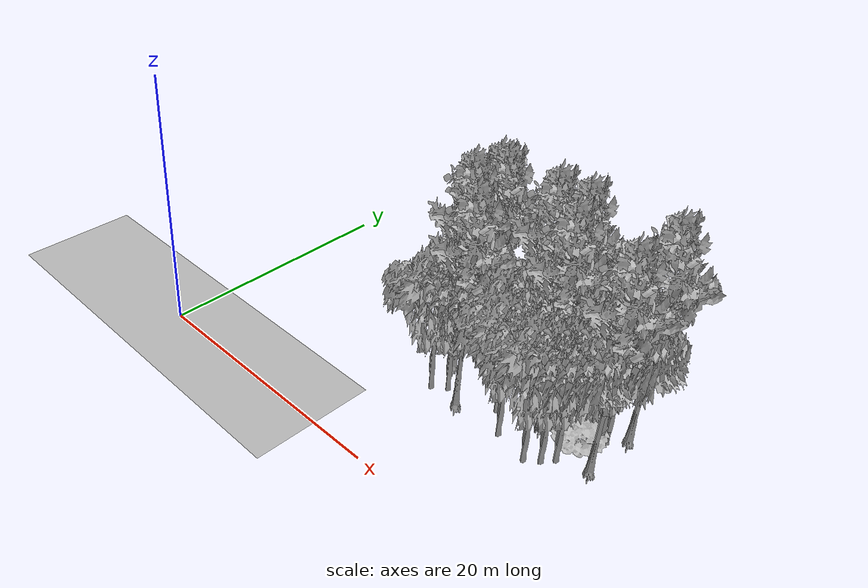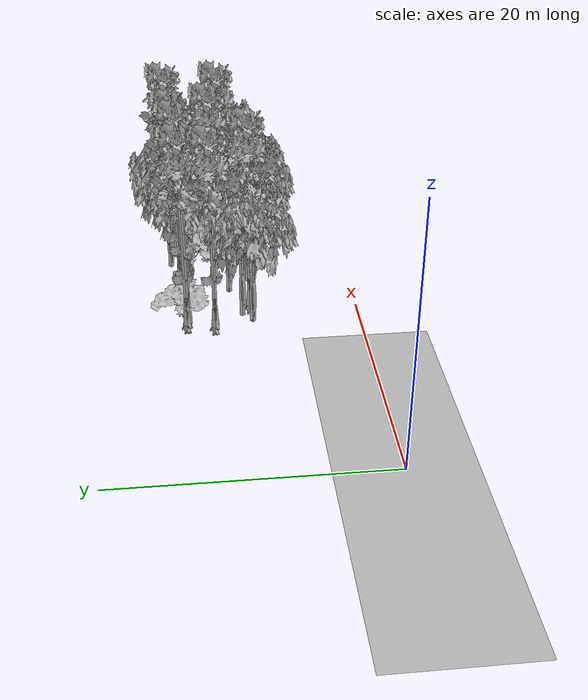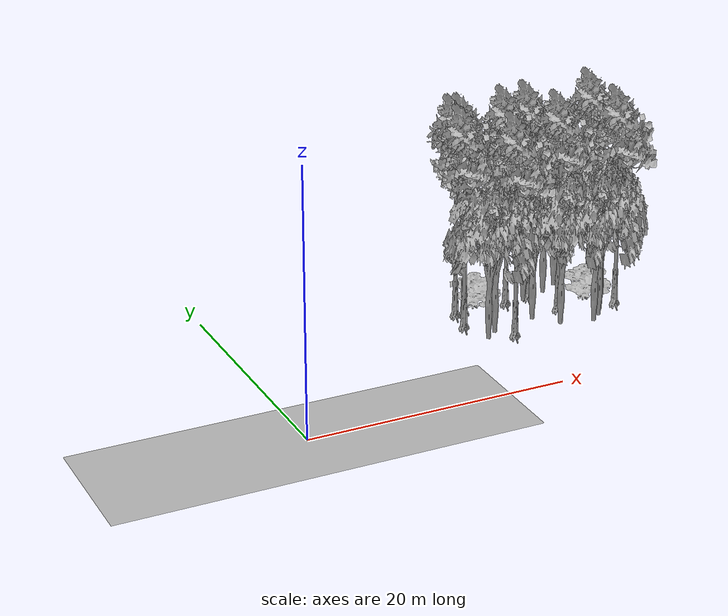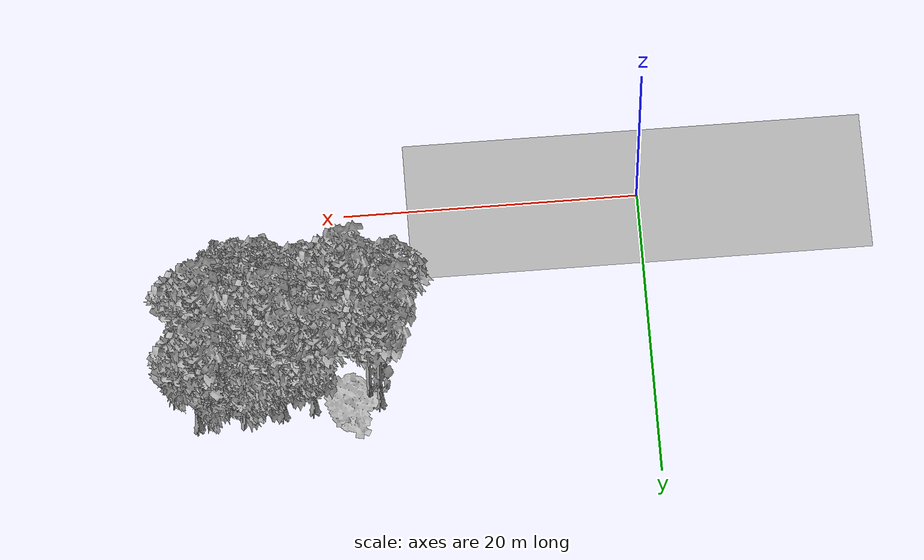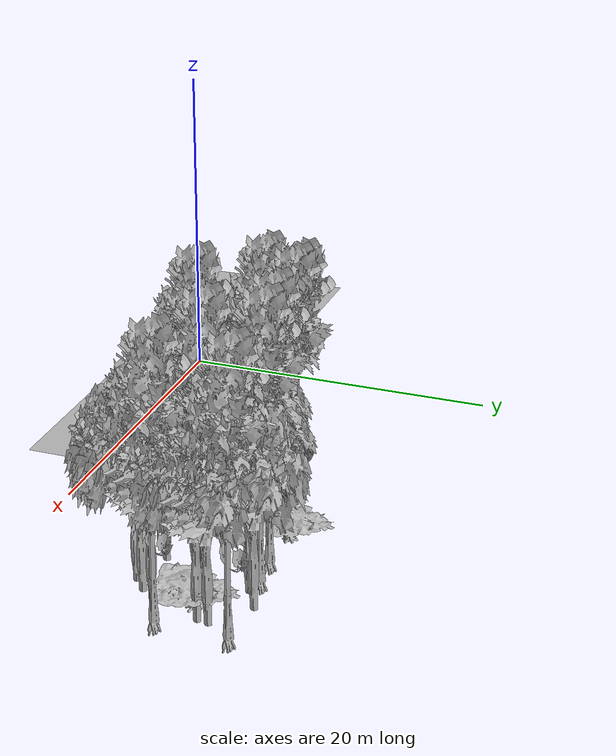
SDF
<sdf version="1.7">
 <world name="default">
  <model name="ground_plane">
   <static>1</static>
   <link name="link">
    <collision name="collision">
     <pose>-50 0 0 0 -0 0</pose>
     <geometry><plane><normal>0 0 1</normal><size>100 100</size></plane></geometry>
     <surface><contact><ode><min_depth>0.01</min_depth><max_vel>0</max_vel></ode></contact></surface>
    </collision>
    <visual name="grass">
     <cast_shadows>0</cast_shadows>
     <geometry>
      <mesh>
       <scale>0.5814285714285714 0.18142857142857144 0.1</scale>
       <uri>file://grass_plane/meshes/grass_plane.dae</uri>
      </mesh>
     </geometry>
    </visual>
   </link>
  </model>
  <model name="Tree 26">
   <static>1</static>
   <pose>19.39115049102091 9.248823598836541 0 1.57079 -0 0</pose>
   <link name="link">
    <collision name="collision">
     <geometry><mesh><scale>3.5 5 3.5</scale><uri>model://tree_2/meshes/tree_2.obj</uri></mesh></geometry>
    </collision>
    <visual name="visual">
     <geometry><mesh><scale>3.5 5 3.5</scale><uri>model://tree_2/meshes/tree_2.obj</uri></mesh></geometry>
    </visual>
   </link>
  </model>
  <model name="Tree 39">
   <static>1</static>
   <pose>28.55282487350665 9.299607638582302 0 1.57079 -0 0</pose>
   <link name="link">
    <collision name="collision">
     <geometry><mesh><scale>3.5 5 3.5</scale><uri>model://tree_2/meshes/tree_2.obj</uri></mesh></geometry>
    </collision>
    <visual name="visual">
     <geometry><mesh><scale>3.5 5 3.5</scale><uri>model://tree_2/meshes/tree_2.obj</uri></mesh></geometry>
    </visual>
   </link>
  </model>
  <model name="Tree 128">
   <static>1</static>
   <pose>24.981876319515365 14.09570819026543 0 1.57079 -0 0</pose>
   <link name="link">
    <collision name="collision">
     <geometry><mesh><scale>3.5 5 3.5</scale><uri>model://tree_9/meshes/tree_9.obj</uri></mesh></geometry>
    </collision>
    <visual name="visual">
     <geometry><mesh><scale>3.5 5 3.5</scale><uri>model://tree_9/meshes/tree_9.obj</uri></mesh></geometry>
    </visual>
   </link>
  </model>
  <model name="Tree 147">
   <static>1</static>
   <pose>18.055874720401306 11.52196916862318 0 1.57079 -0 0</pose>
   <link name="link">
    <collision name="collision">
     <geometry><mesh><scale>3.5 5 3.5</scale><uri>model://tree_9/meshes/tree_9.obj</uri></mesh></geometry>
    </collision>
    <visual name="visual">
     <geometry><mesh><scale>3.5 5 3.5</scale><uri>model://tree_9/meshes/tree_9.obj</uri></mesh></geometry>
    </visual>
   </link>
  </model>
  <model name="Tree 148">
   <static>1</static>
   <pose>26.018302990979265 11.208152750171038 0 1.57079 -0 0</pose>
   <link name="link">
    <collision name="collision">
     <geometry><mesh><scale>3.5 5 3.5</scale><uri>model://tree_9/meshes/tree_9.obj</uri></mesh></geometry>
    </collision>
    <visual name="visual">
     <geometry><mesh><scale>3.5 5 3.5</scale><uri>model://tree_9/meshes/tree_9.obj</uri></mesh></geometry>
    </visual>
   </link>
  </model>
  <model name="Tree 160">
   <static>1</static>
   <pose>27.120773349859945 7.752285397740323 0 1.57079 -0 0</pose>
   <link name="link">
    <collision name="collision">
     <geometry><mesh><scale>3.5 5 3.5</scale><uri>model://tree_2/meshes/tree_2.obj</uri></mesh></geometry>
    </collision>
    <visual name="visual">
     <geometry><mesh><scale>3.5 5 3.5</scale><uri>model://tree_2/meshes/tree_2.obj</uri></mesh></geometry>
    </visual>
   </link>
  </model>
  <model name="Tree 167">
   <static>1</static>
   <pose>18.44989205855812 13.727314058267329 0 1.57079 -0 0</pose>
   <link name="link">
    <collision name="collision">
     <geometry><mesh><scale>3.5 5 3.5</scale><uri>model://tree_9/meshes/tree_9.obj</uri></mesh></geometry>
    </collision>
    <visual name="visual">
     <geometry><mesh><scale>3.5 5 3.5</scale><uri>model://tree_9/meshes/tree_9.obj</uri></mesh></geometry>
    </visual>
   </link>
  </model>
  <model name="Tree 170">
   <static>1</static>
   <pose>23.06094981415076 10.070596392694327 0 1.57079 -0 0</pose>
   <link name="link">
    <collision name="collision">
     <geometry><mesh><scale>3.5 5 3.5</scale><uri>model://tree_2/meshes/tree_2.obj</uri></mesh></geometry>
    </collision>
    <visual name="visual">
     <geometry><mesh><scale>3.5 5 3.5</scale><uri>model://tree_2/meshes/tree_2.obj</uri></mesh></geometry>
    </visual>
   </link>
  </model>
  <model name="Tree 178">
   <static>1</static>
   <pose>22.89803882903739 13.845923478830425 0 1.57079 -0 0</pose>
   <link name="link">
    <collision name="collision">
     <geometry><mesh><scale>3.5 5 3.5</scale><uri>model://tree_9/meshes/tree_9.obj</uri></mesh></geometry>
    </collision>
    <visual name="visual">
     <geometry><mesh><scale>3.5 5 3.5</scale><uri>model://tree_9/meshes/tree_9.obj</uri></mesh></geometry>
    </visual>
   </link>
  </model>
  <model name="Tree 205">
   <static>1</static>
   <pose>19.145765016167502 13.621200272532473 0 1.57079 -0 0</pose>
   <link name="link">
    <collision name="collision">
     <geometry><mesh><scale>3.5 5 3.5</scale><uri>model://tree_9/meshes/tree_9.obj</uri></mesh></geometry>
    </collision>
    <visual name="visual">
     <geometry><mesh><scale>3.5 5 3.5</scale><uri>model://tree_9/meshes/tree_9.obj</uri></mesh></geometry>
    </visual>
   </link>
  </model>
  <model name="Tree 210">
   <static>1</static>
   <pose>24.57642323534644 8.389521329249362 0 1.57079 -0 0</pose>
   <link name="link">
    <collision name="collision">
     <geometry><mesh><scale>3.5 5 3.5</scale><uri>model://tree_2/meshes/tree_2.obj</uri></mesh></geometry>
    </collision>
    <visual name="visual">
     <geometry><mesh><scale>3.5 5 3.5</scale><uri>model://tree_2/meshes/tree_2.obj</uri></mesh></geometry>
    </visual>
   </link>
  </model>
  <model name="Tree 211">
   <static>1</static>
   <pose>27.624650530721055 14.76521222126371 0 1.57079 -0 0</pose>
   <link name="link">
    <collision name="collision">
     <geometry><mesh><scale>3.5 5 3.5</scale><uri>model://tree_2/meshes/tree_2.obj</uri></mesh></geometry>
    </collision>
    <visual name="visual">
     <geometry><mesh><scale>3.5 5 3.5</scale><uri>model://tree_2/meshes/tree_2.obj</uri></mesh></geometry>
    </visual>
   </link>
  </model>
  <model name="Tree 226">
   <static>1</static>
   <pose>20.825550270508714 8.562087697754485 0 1.57079 -0 0</pose>
   <link name="link">
    <collision name="collision">
     <geometry><mesh><scale>3.5 5 3.5</scale><uri>model://tree_9/meshes/tree_9.obj</uri></mesh></geometry>
    </collision>
    <visual name="visual">
     <geometry><mesh><scale>3.5 5 3.5</scale><uri>model://tree_9/meshes/tree_9.obj</uri></mesh></geometry>
    </visual>
   </link>
  </model>
  <model name="Tree 256">
   <static>1</static>
   <pose>29.813291449878875 13.03979170432649 0 1.57079 -0 0</pose>
   <link name="link">
    <collision name="collision">
     <geometry><mesh><scale>3.5 5 3.5</scale><uri>model://tree_2/meshes/tree_2.obj</uri></mesh></geometry>
    </collision>
    <visual name="visual">
     <geometry><mesh><scale>3.5 5 3.5</scale><uri>model://tree_2/meshes/tree_2.obj</uri></mesh></geometry>
    </visual>
   </link>
  </model>
  <model name="Tree 312">
   <static>1</static>
   <pose>18.46031974773875 8.49899124641843 0 1.57079 -0 0</pose>
   <link name="link">
    <collision name="collision">
     <geometry><mesh><scale>3.5 5 3.5</scale><uri>model://tree_2/meshes/tree_2.obj</uri></mesh></geometry>
    </collision>
    <visual name="visual">
     <geometry><mesh><scale>3.5 5 3.5</scale><uri>model://tree_2/meshes/tree_2.obj</uri></mesh></geometry>
    </visual>
   </link>
  </model>
  <model name="Tree 345">
   <static>1</static>
   <pose>29.714665973153075 12.385492703131295 0 1.57079 -0 0</pose>
   <link name="link">
    <collision name="collision">
     <geometry><mesh><scale>3.5 5 3.5</scale><uri>model://tree_2/meshes/tree_2.obj</uri></mesh></geometry>
    </collision>
    <visual name="visual">
     <geometry><mesh><scale>3.5 5 3.5</scale><uri>model://tree_2/meshes/tree_2.obj</uri></mesh></geometry>
    </visual>
   </link>
  </model>
  <model name="Tree 386">
   <static>1</static>
   <pose>28.639728731777026 11.70061276984962 0 1.57079 -0 0</pose>
   <link name="link">
    <collision name="collision">
     <geometry><mesh><scale>4 2.5 4</scale><uri>model://tree_1/meshes/tree_1.obj</uri></mesh></geometry>
    </collision>
    <visual name="visual">
     <geometry><mesh><scale>4 2.5 4</scale><uri>model://tree_1/meshes/tree_1.obj</uri></mesh></geometry>
    </visual>
   </link>
  </model>
  <model name="Tree 406">
   <static>1</static>
   <pose>30.723353600945984 14.53464548529628 0 1.57079 -0 0</pose>
   <link name="link">
    <collision name="collision">
     <geometry><mesh><scale>3.5 5 3.5</scale><uri>model://tree_9/meshes/tree_9.obj</uri></mesh></geometry>
    </collision>
    <visual name="visual">
     <geometry><mesh><scale>3.5 5 3.5</scale><uri>model://tree_9/meshes/tree_9.obj</uri></mesh></geometry>
    </visual>
   </link>
  </model>
  <model name="Tree 440">
   <static>1</static>
   <pose>30.57642399159954 10.274956577253949 0 1.57079 -0 0</pose>
   <link name="link">
    <collision name="collision">
     <geometry><mesh><scale>3.5 5 3.5</scale><uri>model://tree_9/meshes/tree_9.obj</uri></mesh></geometry>
    </collision>
    <visual name="visual">
     <geometry><mesh><scale>3.5 5 3.5</scale><uri>model://tree_9/meshes/tree_9.obj</uri></mesh></geometry>
    </visual>
   </link>
  </model>
  <model name="Tree 478">
   <static>1</static>
   <pose>27.966288718888975 8.481228274283438 0 1.57079 -0 0</pose>
   <link name="link">
    <collision name="collision">
     <geometry><mesh><scale>3.5 5 3.5</scale><uri>model://tree_2/meshes/tree_2.obj</uri></mesh></geometry>
    </collision>
    <visual name="visual">
     <geometry><mesh><scale>3.5 5 3.5</scale><uri>model://tree_2/meshes/tree_2.obj</uri></mesh></geometry>
    </visual>
   </link>
  </model>
  <model name="Tree 506">
   <static>1</static>
   <pose>24.03875450680846 13.227052045425523 0 1.57079 -0 0</pose>
   <link name="link">
    <collision name="collision">
     <geometry><mesh><scale>3.5 5 3.5</scale><uri>model://tree_2/meshes/tree_2.obj</uri></mesh></geometry>
    </collision>
    <visual name="visual">
     <geometry><mesh><scale>3.5 5 3.5</scale><uri>model://tree_2/meshes/tree_2.obj</uri></mesh></geometry>
    </visual>
   </link>
  </model>
  <model name="Tree 524">
   <static>1</static>
   <pose>26.172327558391387 13.919292933126659 0 1.57079 -0 0</pose>
   <link name="link">
    <collision name="collision">
     <geometry><mesh><scale>3.5 5 3.5</scale><uri>model://tree_2/meshes/tree_2.obj</uri></mesh></geometry>
    </collision>
    <visual name="visual">
     <geometry><mesh><scale>3.5 5 3.5</scale><uri>model://tree_2/meshes/tree_2.obj</uri></mesh></geometry>
    </visual>
   </link>
  </model>
  <model name="Tree 530">
   <static>1</static>
   <pose>20.18948076125008 14.030110682169504 0 1.57079 -0 0</pose>
   <link name="link">
    <collision name="collision">
     <geometry><mesh><scale>4 2.5 4</scale><uri>model://tree_1/meshes/tree_1.obj</uri></mesh></geometry>
    </collision>
    <visual name="visual">
     <geometry><mesh><scale>4 2.5 4</scale><uri>model://tree_1/meshes/tree_1.obj</uri></mesh></geometry>
    </visual>
   </link>
  </model>
 </world>
</sdf>
